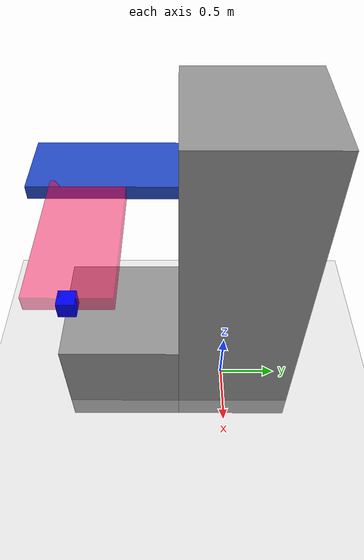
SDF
<?xml version="1.0" ?>
<!--
  Ignition gazebo demo using IMU sensor for Gimbal
-->
<sdf version="1.6">
  <world name="gimbal_system">
    <physics name="1ms" type="ignored">
      <max_step_size>0.001</max_step_size>
      <real_time_factor>1.0</real_time_factor>
    </physics>
    <plugin
      filename="ignition-gazebo-physics-system"
      name="ignition::gazebo::systems::Physics">
    </plugin>
    <plugin
      filename="ignition-gazebo-air-pressure-system"
      name="ignition::gazebo::systems::AirPressure">
    </plugin>
    <plugin
      filename="ignition-gazebo-altimeter-system"
      name="ignition::gazebo::systems::Altimeter">
    </plugin>
    <plugin
      filename="ignition-gazebo-imu-system"
      name="ignition::gazebo::systems::Imu">
    </plugin>
    <plugin
      filename="ignition-gazebo-magnetometer-system"
      name="ignition::gazebo::systems::Magnetometer">
    </plugin>
    <plugin
      filename="ignition-gazebo-user-commands-system"
      name="ignition::gazebo::systems::UserCommands">
    </plugin>
    <plugin
      filename="ignition-gazebo-scene-broadcaster-system"
      name="ignition::gazebo::systems::SceneBroadcaster">
    </plugin>

    <light type="directional" name="sun">
      <cast_shadows>true</cast_shadows>
      <pose>0 0 10 0 0 0</pose>
      <diffuse>0.8 0.8 0.8 1</diffuse>
      <specular>0.2 0.2 0.2 1</specular>
      <attenuation>
        <range>1000</range>
        <constant>0.9</constant>
        <linear>0.01</linear>
        <quadratic>0.001</quadratic>
      </attenuation>
      <direction>-0.5 0.1 -0.9</direction>
    </light>

    <model name="ground_plane">
      <static>true</static>
      <link name="link">
        <collision name="collision">
          <geometry>
            <plane>
              <normal>0 0 1</normal>
              <size>100 100</size>
            </plane>
          </geometry>
        </collision>
        <visual name="visual">
          <geometry>
            <plane>
              <normal>0 0 1</normal>
              <size>100 100</size>
            </plane>
          </geometry>
          <material>
            <ambient>0.8 0.8 0.8 1</ambient>
            <diffuse>0.8 0.8 0.8 1</diffuse>
            <specular>0.8 0.8 0.8 1</specular>
          </material>
        </visual>
      </link>
    </model>

    <model name='gimbal'>
      <link name='base_link'>
        <inertial>
          <mass>2.42736</mass>
          <inertia>
            <ixx>1.39413</ixx>
            <ixy>0</ixy>
            <ixz>0</ixz>
            <iyy>1.39413</iyy>
            <iyz>0</iyz>
            <izz>0.40456</izz>
          </inertia>
        </inertial>
        <pose frame=''>-0.1875 0.09375 1.25 0 -0 0</pose>
        <gravity>1</gravity>
        <visual name='visual'>
          <geometry>
            <box>
              <size>1 1 3</size>
            </box>
          </geometry>
          <material>
            <lighting>1</lighting>
            <script>
              <uri>file://media/materials/scripts/gazebo.material</uri>
              <name>Gazebo/Grey</name>
            </script>
            <ambient>0.3 0.3 0.3 1</ambient>
            <diffuse>0.7 0.7 0.7 1</diffuse>
            <specular>0.01 0.01 0.01 1</specular>
            <emissive>0 0 0 1</emissive>
          </material>
          <cast_shadows>0</cast_shadows>
        </visual>
        <collision name='collision'>
          <max_contacts>10</max_contacts>
          <geometry>
            <box>
              <size>1 1 3</size>
            </box>
          </geometry>
        </collision>
      </link>

      <link name='link_0'>
        <inertial>
          <mass>10</mass>
          <inertia>
            <ixx>0.00166667</ixx>
            <ixy>0</ixy>
            <ixz>0</ixz>
            <iyy>0.00166667</iyy>
            <iyz>0</iyz>
            <izz>0.00166667</izz>
          </inertia>
        </inertial>
        <pose frame=''>1 -1 2.25 0 0 -0.003075</pose>
        <gravity>1</gravity>
        <visual name='visual'>
          <geometry>
            <box>
              <size>0.1 0.1 0.1</size>
            </box>
          </geometry>
          <material>
            <lighting>1</lighting>
            <script>
              <uri>file://media/materials/scripts/gazebo.material</uri>
              <name>Gazebo/Grey</name>
            </script>
            <ambient>0 0 1 1</ambient>
            <diffuse>0 0 1 1</diffuse>
            <specular>0 0 1 1</specular>
            <emissive>0 0 0 1</emissive>
          </material>
          <cast_shadows>0</cast_shadows>
        </visual>
      </link>

      <link name='link_2'>
        <inertial>
          <mass>2000</mass>
          <inertia>
            <ixx>333.333</ixx>
            <ixy>0</ixy>
            <ixz>0</ixz>
            <iyy>333.333</iyy>
            <iyz>0</iyz>
            <izz>333.333</izz>
          </inertia>
        </inertial>
        <pose frame=''>-0.1875 -0.90625 0.25 0 -0 0</pose>
        <self_collide>0</self_collide>
        <kinematic>0</kinematic>
        <gravity>1</gravity>
        <visual name='visual'>
          <geometry>
            <box>
              <size>1 1 1</size>
            </box>
          </geometry>
          <material>
            <lighting>1</lighting>
            <script>
              <uri>file://media/materials/scripts/gazebo.material</uri>
              <name>Gazebo/Grey</name>
            </script>
            <ambient>0.3 0.3 0.3 1</ambient>
            <diffuse>0.7 0.7 0.7 1</diffuse>
            <specular>0.01 0.01 0.01 1</specular>
            <emissive>0 0 0 1</emissive>
          </material>
          <cast_shadows>1</cast_shadows>
        </visual>
      </link>
      <link name='link_3'>
        <inertial>
          <mass>1</mass>
          <inertia>
            <ixx>0.166667</ixx>
            <ixy>0</ixy>
            <ixz>0</ixz>
            <iyy>0.166667</iyy>
            <iyz>0</iyz>
            <izz>0.166667</izz>
          </inertia>
        </inertial>
        <pose frame=''>-0.1875 -0.90625 2.25 0 -0 0</pose>
        <gravity>1</gravity>
        <self_collide>0</self_collide>
        <kinematic>0</kinematic>
        <visual name='visual'>
          <geometry>
            <box>
              <size>0.5 1 0.1</size>
            </box>
          </geometry>
          <material>
            <lighting>1</lighting>
            <script>
              <uri>file://media/materials/scripts/gazebo.material</uri>
              <name>Gazebo/Blue</name>
            </script>
            <ambient>0 1 0.3 1</ambient>
            <diffuse>0.7 0.7 0.7 1</diffuse>
            <specular>0.01 0.01 0.01 1</specular>
            <emissive>0 0 0 1</emissive>
          </material>
          <cast_shadows>1</cast_shadows>
        </visual>
      </link>
      <link name='link_4'>
        <inertial>
          <mass>0.1</mass>
          <inertia>
            <ixx>0.00216667</ixx>
            <ixy>0</ixy>
            <ixz>0</ixz>
            <iyy>0.00841667</iyy>
            <iyz>0</iyz>
            <izz>0.0104167</izz>
          </inertia>
        </inertial>
        <pose frame=''>0.5 -1 2.25 0 -0 0</pose>
        <gravity>1</gravity>
        <visual name='visual'>
          <geometry>
            <box>
              <size>1 0.5 0.1</size>
            </box>
          </geometry>
          <material>
            <lighting>1</lighting>
            <script>
              <uri>file://media/materials/scripts/gazebo.material</uri>
              <name>Gazebo/Grey</name>
            </script>
            <ambient>1 0 0.3 0.5</ambient>
            <diffuse>0.7 0.7 0.7 0.5</diffuse>
            <specular>0.01 0.01 0.01 0.5</specular>
            <emissive>0 0 0 0.5</emissive>
          </material>
          <cast_shadows>0</cast_shadows>
        </visual>
      </link>

      <joint name='yaw_joint' type='ball'>
        <parent>link_4</parent>
        <child>link_0</child>
        <pose frame=''>0 0 0 0 -0 0</pose>
        <physics>
          <ode>
            <limit>
              <cfm>0</cfm>
              <erp>0.2</erp>
            </limit>
            <suspension>
              <cfm>0</cfm>
              <erp>0.2</erp>
            </suspension>
          </ode>
        </physics>
      </joint>
      <joint name='rev_joint_1' type='revolute'>
        <parent>base_link</parent>
        <child>link_3</child>
        <pose frame=''>0 0 0 0 -0 0</pose>
        <axis>
          <xyz>0 1 0</xyz>
          <use_parent_model_frame>0</use_parent_model_frame>
          <limit>
            <lower>-1.79769e+308</lower>
            <upper>1.79769e+308</upper>
            <effort>-1</effort>
            <velocity>-1</velocity>
          </limit>
          <dynamics>
            <spring_reference>0</spring_reference>
            <spring_stiffness>0</spring_stiffness>
            <damping>10</damping>
            <friction>10</friction>
          </dynamics>
        </axis>
        <physics>
          <ode>
            <limit>
              <cfm>0</cfm>
              <erp>0.2</erp>
            </limit>
            <suspension>
              <cfm>0</cfm>
              <erp>0.2</erp>
            </suspension>
          </ode>
        </physics>
      </joint>
      <joint name='fix_joint_1' type='fixed'>
        <parent>base_link</parent>
        <child>link_2</child>
        <pose frame=''>0 0 0 0 -0 0</pose>
        <physics>
          <ode>
            <limit>
              <cfm>0</cfm>
              <erp>0.2</erp>
            </limit>
            <suspension>
              <cfm>0</cfm>
              <erp>0.2</erp>
            </suspension>
          </ode>
        </physics>
      </joint>
      <joint name='world_joint' type='fixed'>
        <parent>world</parent>
        <child>base_link</child>
        <pose frame=''>0 0 0 0 -0 0</pose>
      </joint>
      <joint name='rev_joint_2' type='revolute'>
        <parent>link_3</parent>
        <child>link_4</child>
        <pose frame=''>0 0 0 0 -0 0</pose>
        <axis>
          <xyz>1 0 0</xyz>
          <use_parent_model_frame>0</use_parent_model_frame>
          <limit>
            <lower>-1.79769e+308</lower>
            <upper>1.79769e+308</upper>
            <effort>-1</effort>
            <velocity>-1</velocity>
          </limit>
          <dynamics>
            <spring_reference>0</spring_reference>
            <spring_stiffness>0</spring_stiffness>
            <damping>1</damping>
            <friction>0</friction>
          </dynamics>
        </axis>
        <physics>
          <ode>
            <limit>
              <cfm>0</cfm>
              <erp>0.2</erp>
            </limit>
            <suspension>
              <cfm>0</cfm>
              <erp>0.2</erp>
            </suspension>
          </ode>
        </physics>
      </joint>

      <plugin filename="ignition-gazebo-gimbalcontrollerplugin-system"
        name="ignition::gazebo::systems::GimbalControllerPlugin">
        <joint_yaw>yaw_joint</joint_yaw>
        <joint_roll>rev_joint_2</joint_roll>
        <joint_pitch>rev_joint_1</joint_pitch>
      </plugin>
    </model>
  </world>
</sdf>
